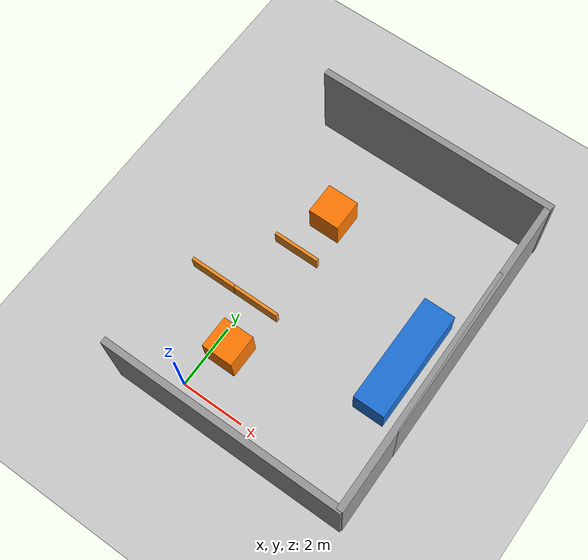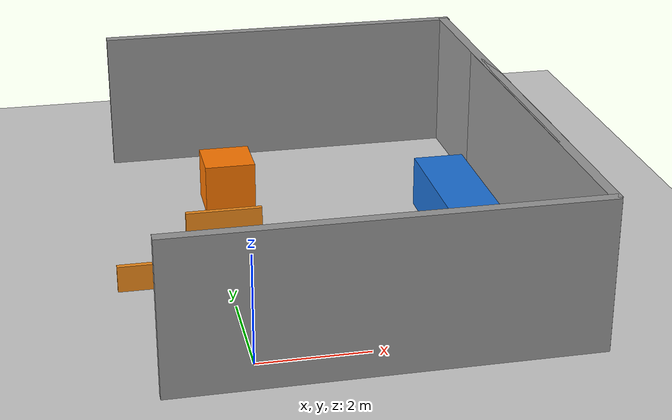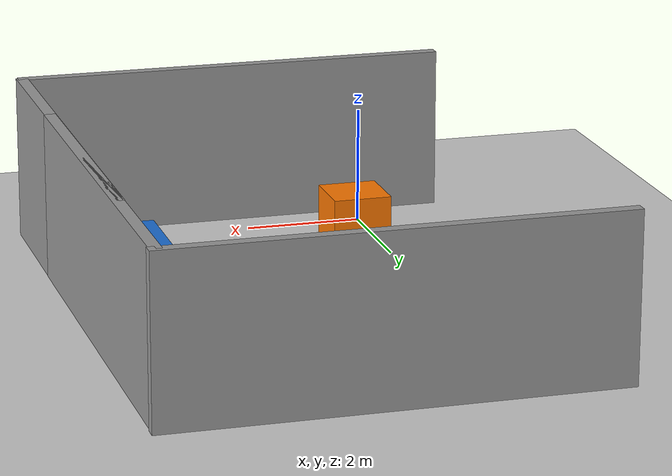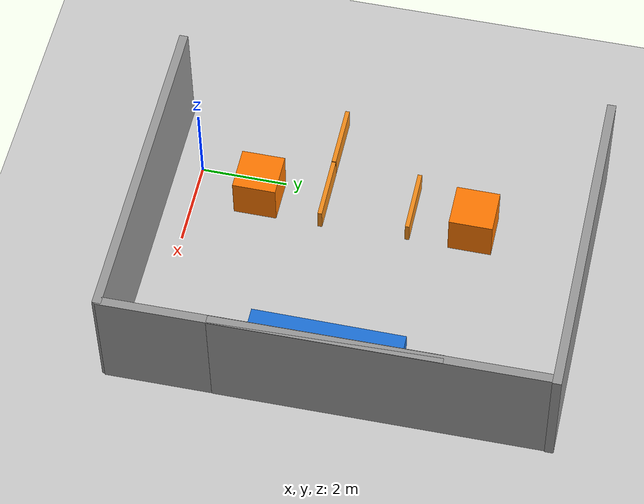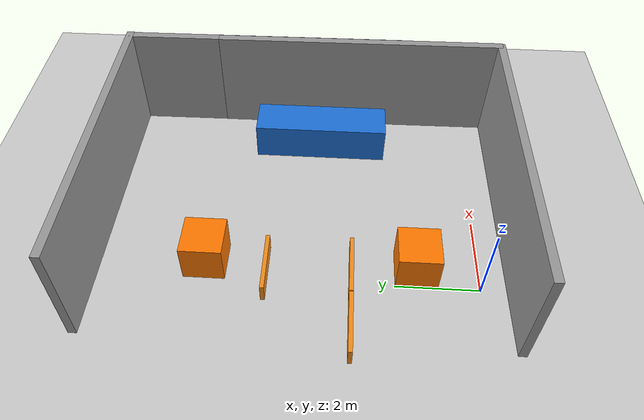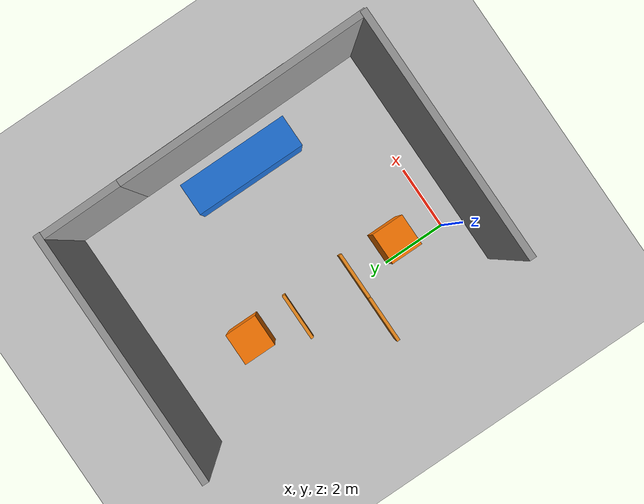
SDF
<sdf version="1.7">
 <world name="default">
  <model name="ground_plane">
   <static>1</static>
   <link name="link">
    <collision name="collision">
     <geometry><plane><normal>0 0 1</normal><size>100 100</size></plane></geometry>
     <surface><friction><ode><mu>100</mu><mu2>50</mu2></ode></friction></surface>
    </collision>
    <visual name="visual">
     <cast_shadows>0</cast_shadows>
     <geometry><plane><normal>0 0 1</normal><size>100 100</size></plane></geometry>
     <material>
      <script><uri>file://media/materials/scripts/gazebo.material</uri><name>Gazebo/Grey</name></script>
     </material>
    </visual>
   </link>
  </model>
  <model name="grey_wall_clone">
   <static>1</static>
   <link name="link">
    <pose>0 0 1.4 0 -0 0</pose>
    <collision name="collision"><geometry><box><size>7.5 0.2 2.8</size></box></geometry></collision>
    <visual name="visual">
     <cast_shadows>0</cast_shadows>
     <geometry><box><size>7.5 0.2 2.8</size></box></geometry>
     <material>
      <script>
       <uri>model://grey_wall/materials/scripts</uri>
       <uri>model://grey_wall/materials/textures</uri>
       <name>vrc/grey_wall</name>
      </script>
     </material>
    </visual>
   </link>
   <pose>2.09203 9.16116 0 0 -0 0</pose>
  </model>
  <model name="grey_wall_clone_2">
   <static>1</static>
   <link name="link">
    <pose>0 0 1.4 0 -0 0</pose>
    <collision name="collision"><geometry><box><size>7.5 0.2 2.8</size></box></geometry></collision>
    <visual name="visual">
     <cast_shadows>0</cast_shadows>
     <geometry><box><size>7.5 0.2 2.8</size></box></geometry>
     <material>
      <script>
       <uri>model://grey_wall/materials/scripts</uri>
       <uri>model://grey_wall/materials/textures</uri>
       <name>vrc/grey_wall</name>
      </script>
     </material>
    </visual>
   </link>
   <pose>2.13099 -0.706051 0 0 -0 0</pose>
  </model>
  <model name="grey_wall_clone_0_clone_clone">
   <static>1</static>
   <link name="link">
    <pose>0 0 1.4 0 -0 0</pose>
    <collision name="collision"><geometry><box><size>7.5 0.2 2.8</size></box></geometry></collision>
    <visual name="visual">
     <cast_shadows>0</cast_shadows>
     <geometry><box><size>7.5 0.2 2.8</size></box></geometry>
     <material>
      <script>
       <uri>model://grey_wall/materials/scripts</uri>
       <uri>model://grey_wall/materials/textures</uri>
       <name>vrc/grey_wall</name>
      </script>
     </material>
    </visual>
   </link>
   <pose>5.77499 3.00644 0 0 -0 1.58052</pose>
  </model>
  <model name="grey_wall_clone_0_clone_clone_0">
   <static>1</static>
   <link name="link">
    <pose>0 0 1.4 0 -0 0</pose>
    <collision name="collision"><geometry><box><size>7.5 0.2 2.8</size></box></geometry></collision>
    <visual name="visual">
     <cast_shadows>0</cast_shadows>
     <geometry><box><size>7.5 0.2 2.8</size></box></geometry>
     <material>
      <script>
       <uri>model://grey_wall/materials/scripts</uri>
       <uri>model://grey_wall/materials/textures</uri>
       <name>vrc/grey_wall</name>
      </script>
     </material>
    </visual>
   </link>
   <pose>5.758 5.42643 0 0 -0 1.58052</pose>
  </model>
  <model name="unit_box_0_clone">
   <link name="link">
    <inertial>
     <mass>1</mass>
     <inertia>
      <ixx>0.166667</ixx>
      <ixy>0</ixy>
      <ixz>0</ixz>
      <iyy>0.166667</iyy>
      <iyz>0</iyz>
      <izz>0.166667</izz>
     </inertia>
    </inertial>
    <visual name="visual">
     <geometry><box><size>1 1 1</size></box></geometry>
     <material>
      <script><name>Gazebo/Grey</name><uri>file://media/materials/scripts/gazebo.material</uri></script>
      <shader type="pixel"><normal_map>__default__</normal_map></shader>
      <ambient>1 0.471 0 1</ambient>
      <diffuse>0.7 0.7 0.7 1</diffuse>
      <specular>0.01 0.01 0.01 1</specular>
      <emissive>0 0 0 1</emissive>
     </material>
    </visual>
    <collision name="collision">
     <geometry><box><size>1 1 1</size></box></geometry>
     <surface>
      <friction>
       <ode><mu>1</mu><mu2>1</mu2><fdir1>0 0 0</fdir1><slip1>0</slip1><slip2>0</slip2></ode>
       <torsional>
        <coefficient>1</coefficient>
        <patch_radius>0</patch_radius>
        <surface_radius>0</surface_radius>
        <use_patch_radius>1</use_patch_radius>
        <ode><slip>0</slip></ode>
       </torsional>
      </friction>
      <bounce><restitution_coefficient>0</restitution_coefficient><threshold>1e+06</threshold></bounce>
      <contact>
       <collide_without_contact>0</collide_without_contact>
       <collide_without_contact_bitmask>1</collide_without_contact_bitmask>
       <collide_bitmask>1</collide_bitmask>
       <ode>
        <soft_cfm>0</soft_cfm>
        <soft_erp>0.2</soft_erp>
        <kp>1e+13</kp>
        <kd>1</kd>
        <max_vel>0.01</max_vel>
        <min_depth>0</min_depth>
       </ode>
       <bullet>
        <split_impulse>1</split_impulse>
        <split_impulse_penetration_threshold>-0.01</split_impulse_penetration_threshold>
        <soft_cfm>0</soft_cfm>
        <soft_erp>0.2</soft_erp>
        <kp>1e+13</kp>
        <kd>1</kd>
       </bullet>
      </contact>
     </surface>
    </collision>
   </link>
   <static>0</static>
   <pose>0.482992 6.50389 0.499995 -1e-05 -0 -0</pose>
  </model>
  <model name="unit_box_0_clone_1">
   <link name="link">
    <inertial>
     <mass>1</mass>
     <inertia>
      <ixx>0.166667</ixx>
      <ixy>0</ixy>
      <ixz>0</ixz>
      <iyy>0.166667</iyy>
      <iyz>0</iyz>
      <izz>0.166667</izz>
     </inertia>
    </inertial>
    <visual name="visual">
     <geometry><box><size>1 1 1</size></box></geometry>
     <material>
      <script><name>Gazebo/Grey</name><uri>file://media/materials/scripts/gazebo.material</uri></script>
      <shader type="pixel"><normal_map>__default__</normal_map></shader>
      <ambient>1 0.471 0 1</ambient>
      <diffuse>0.7 0.7 0.7 1</diffuse>
      <specular>0.01 0.01 0.01 1</specular>
      <emissive>0 0 0 1</emissive>
     </material>
    </visual>
    <collision name="collision">
     <geometry><box><size>1 1 1</size></box></geometry>
     <surface>
      <friction>
       <ode><mu>1</mu><mu2>1</mu2><fdir1>0 0 0</fdir1><slip1>0</slip1><slip2>0</slip2></ode>
       <torsional>
        <coefficient>1</coefficient>
        <patch_radius>0</patch_radius>
        <surface_radius>0</surface_radius>
        <use_patch_radius>1</use_patch_radius>
        <ode><slip>0</slip></ode>
       </torsional>
      </friction>
      <bounce><restitution_coefficient>0</restitution_coefficient><threshold>1e+06</threshold></bounce>
      <contact>
       <collide_without_contact>0</collide_without_contact>
       <collide_without_contact_bitmask>1</collide_without_contact_bitmask>
       <collide_bitmask>1</collide_bitmask>
       <ode>
        <soft_cfm>0</soft_cfm>
        <soft_erp>0.2</soft_erp>
        <kp>1e+13</kp>
        <kd>1</kd>
        <max_vel>0.01</max_vel>
        <min_depth>0</min_depth>
       </ode>
       <bullet>
        <split_impulse>1</split_impulse>
        <split_impulse_penetration_threshold>-0.01</split_impulse_penetration_threshold>
        <soft_cfm>0</soft_cfm>
        <soft_erp>0.2</soft_erp>
        <kp>1e+13</kp>
        <kd>1</kd>
       </bullet>
      </contact>
     </surface>
    </collision>
   </link>
   <static>0</static>
   <pose>0.497635 1.48972 0.499995 -1e-05 -0 -0</pose>
  </model>
  <model name="unit_box_clone_clone">
   <link name="link">
    <inertial>
     <mass>1</mass>
     <inertia>
      <ixx>0.166667</ixx>
      <ixy>0</ixy>
      <ixz>0</ixz>
      <iyy>0.166667</iyy>
      <iyz>0</iyz>
      <izz>0.166667</izz>
     </inertia>
    </inertial>
    <visual name="visual">
     <geometry><box><size>1 3.48173 1</size></box></geometry>
     <material>
      <script><name>Gazebo/Grey</name><uri>file://media/materials/scripts/gazebo.material</uri></script>
      <shader type="pixel"><normal_map>__default__</normal_map></shader>
      <ambient>0.11 0.443 0.847 1</ambient>
      <diffuse>0.7 0.7 0.7 1</diffuse>
      <specular>0.01 0.01 0.01 1</specular>
      <emissive>0 0 0 1</emissive>
     </material>
    </visual>
    <collision name="collision">
     <geometry><box><size>1 3.48173 1</size></box></geometry>
     <surface>
      <friction>
       <ode><mu>1</mu><mu2>1</mu2><fdir1>0 0 0</fdir1><slip1>0</slip1><slip2>0</slip2></ode>
       <torsional>
        <coefficient>1</coefficient>
        <patch_radius>0</patch_radius>
        <surface_radius>0</surface_radius>
        <use_patch_radius>1</use_patch_radius>
        <ode><slip>0</slip></ode>
       </torsional>
      </friction>
      <bounce><restitution_coefficient>0</restitution_coefficient><threshold>1e+06</threshold></bounce>
      <contact>
       <collide_without_contact>0</collide_without_contact>
       <collide_without_contact_bitmask>1</collide_without_contact_bitmask>
       <collide_bitmask>1</collide_bitmask>
       <ode>
        <soft_cfm>0</soft_cfm>
        <soft_erp>0.2</soft_erp>
        <kp>1e+13</kp>
        <kd>1</kd>
        <max_vel>0.01</max_vel>
        <min_depth>0</min_depth>
       </ode>
       <bullet>
        <split_impulse>1</split_impulse>
        <split_impulse_penetration_threshold>-0.01</split_impulse_penetration_threshold>
        <soft_cfm>0</soft_cfm>
        <soft_erp>0.2</soft_erp>
        <kp>1e+13</kp>
        <kd>1</kd>
       </bullet>
      </contact>
     </surface>
    </collision>
   </link>
   <static>0</static>
   <pose>4.69057 3.94303 0.499622 -0.000217 0 0</pose>
  </model>
  <model name="divider_2">
   <link name="link">
    <inertial>
     <mass>1</mass>
     <inertia>
      <ixx>0.166667</ixx>
      <ixy>0</ixy>
      <ixz>0</ixz>
      <iyy>0.166667</iyy>
      <iyz>0</iyz>
      <izz>0.166667</izz>
     </inertia>
    </inertial>
    <visual name="visual">
     <geometry><box><size>1.5 0.1 0.5</size></box></geometry>
     <material>
      <script><name>Gazebo/Orange</name><uri>file://media/materials/scripts/gazebo.material</uri></script>
      <shader type="pixel"><normal_map>__default__</normal_map></shader>
      <ambient>0.71 0.514 0.353 1</ambient>
      <diffuse>0.7 0.7 0.7 1</diffuse>
      <specular>0.01 0.01 0.01 1</specular>
      <emissive>0 0 0 1</emissive>
     </material>
    </visual>
    <collision name="collision">
     <geometry><box><size>1.5 0.1 0.5</size></box></geometry>
     <surface>
      <friction>
       <ode><mu>1</mu><mu2>1</mu2><fdir1>0 0 0</fdir1><slip1>0</slip1><slip2>0</slip2></ode>
       <torsional>
        <coefficient>1</coefficient>
        <patch_radius>0</patch_radius>
        <surface_radius>0</surface_radius>
        <use_patch_radius>1</use_patch_radius>
        <ode><slip>0</slip></ode>
       </torsional>
      </friction>
      <bounce><restitution_coefficient>0</restitution_coefficient><threshold>1e+06</threshold></bounce>
      <contact>
       <collide_without_contact>0</collide_without_contact>
       <collide_without_contact_bitmask>1</collide_without_contact_bitmask>
       <collide_bitmask>1</collide_bitmask>
       <ode>
        <soft_cfm>0</soft_cfm>
        <soft_erp>0.2</soft_erp>
        <kp>1e+13</kp>
        <kd>1</kd>
        <max_vel>0.01</max_vel>
        <min_depth>0</min_depth>
       </ode>
       <bullet>
        <split_impulse>1</split_impulse>
        <split_impulse_penetration_threshold>-0.01</split_impulse_penetration_threshold>
        <soft_cfm>0</soft_cfm>
        <soft_erp>0.2</soft_erp>
        <kp>1e+13</kp>
        <kd>1</kd>
       </bullet>
      </contact>
     </surface>
    </collision>
   </link>
   <static>0</static>
   <pose>-1.26136 3.02336 0.249992 0 -1.1e-05 -0.000405</pose>
  </model>
  <model name="divider_3">
   <link name="link">
    <inertial>
     <mass>1</mass>
     <inertia>
      <ixx>0.166667</ixx>
      <ixy>0</ixy>
      <ixz>0</ixz>
      <iyy>0.166667</iyy>
      <iyz>0</iyz>
      <izz>0.166667</izz>
     </inertia>
    </inertial>
    <visual name="visual">
     <geometry><box><size>1.5 0.1 0.5</size></box></geometry>
     <material>
      <script><name>Gazebo/Orange</name><uri>file://media/materials/scripts/gazebo.material</uri></script>
      <shader type="pixel"><normal_map>__default__</normal_map></shader>
      <ambient>0.71 0.514 0.353 1</ambient>
      <diffuse>0.7 0.7 0.7 1</diffuse>
      <specular>0.01 0.01 0.01 1</specular>
      <emissive>0 0 0 1</emissive>
     </material>
    </visual>
    <collision name="collision">
     <geometry><box><size>1.5 0.1 0.5</size></box></geometry>
     <surface>
      <friction>
       <ode><mu>1</mu><mu2>1</mu2><fdir1>0 0 0</fdir1><slip1>0</slip1><slip2>0</slip2></ode>
       <torsional>
        <coefficient>1</coefficient>
        <patch_radius>0</patch_radius>
        <surface_radius>0</surface_radius>
        <use_patch_radius>1</use_patch_radius>
        <ode><slip>0</slip></ode>
       </torsional>
      </friction>
      <bounce><restitution_coefficient>0</restitution_coefficient><threshold>1e+06</threshold></bounce>
      <contact>
       <collide_without_contact>0</collide_without_contact>
       <collide_without_contact_bitmask>1</collide_without_contact_bitmask>
       <collide_bitmask>1</collide_bitmask>
       <ode>
        <soft_cfm>0</soft_cfm>
        <soft_erp>0.2</soft_erp>
        <kp>1e+13</kp>
        <kd>1</kd>
        <max_vel>0.01</max_vel>
        <min_depth>0</min_depth>
       </ode>
       <bullet>
        <split_impulse>1</split_impulse>
        <split_impulse_penetration_threshold>-0.01</split_impulse_penetration_threshold>
        <soft_cfm>0</soft_cfm>
        <soft_erp>0.2</soft_erp>
        <kp>1e+13</kp>
        <kd>1</kd>
       </bullet>
      </contact>
     </surface>
    </collision>
   </link>
   <static>0</static>
   <pose>0.260208 3.02506 0.249992 0 -1.1e-05 0.000315</pose>
  </model>
  <model name="divider_4">
   <link name="link">
    <inertial>
     <mass>1</mass>
     <inertia>
      <ixx>0.166667</ixx>
      <ixy>0</ixy>
      <ixz>0</ixz>
      <iyy>0.166667</iyy>
      <iyz>0</iyz>
      <izz>0.166667</izz>
     </inertia>
    </inertial>
    <visual name="visual">
     <geometry><box><size>1.5 0.1 0.5</size></box></geometry>
     <material>
      <script><name>Gazebo/Orange</name><uri>file://media/materials/scripts/gazebo.material</uri></script>
      <shader type="pixel"><normal_map>__default__</normal_map></shader>
      <ambient>0.71 0.514 0.353 1</ambient>
      <diffuse>0.7 0.7 0.7 1</diffuse>
      <specular>0.01 0.01 0.01 1</specular>
      <emissive>0 0 0 1</emissive>
     </material>
    </visual>
    <collision name="collision">
     <geometry><box><size>1.5 0.1 0.5</size></box></geometry>
     <surface>
      <friction>
       <ode><mu>1</mu><mu2>1</mu2><fdir1>0 0 0</fdir1><slip1>0</slip1><slip2>0</slip2></ode>
       <torsional>
        <coefficient>1</coefficient>
        <patch_radius>0</patch_radius>
        <surface_radius>0</surface_radius>
        <use_patch_radius>1</use_patch_radius>
        <ode><slip>0</slip></ode>
       </torsional>
      </friction>
      <bounce><restitution_coefficient>0</restitution_coefficient><threshold>1e+06</threshold></bounce>
      <contact>
       <collide_without_contact>0</collide_without_contact>
       <collide_without_contact_bitmask>1</collide_without_contact_bitmask>
       <collide_bitmask>1</collide_bitmask>
       <ode>
        <soft_cfm>0</soft_cfm>
        <soft_erp>0.2</soft_erp>
        <kp>1e+13</kp>
        <kd>1</kd>
        <max_vel>0.01</max_vel>
        <min_depth>0</min_depth>
       </ode>
       <bullet>
        <split_impulse>1</split_impulse>
        <split_impulse_penetration_threshold>-0.01</split_impulse_penetration_threshold>
        <soft_cfm>0</soft_cfm>
        <soft_erp>0.2</soft_erp>
        <kp>1e+13</kp>
        <kd>1</kd>
       </bullet>
      </contact>
     </surface>
    </collision>
   </link>
   <static>0</static>
   <pose>0.20772 5.0507 0.249992 0 -1.1e-05 -0.000532</pose>
  </model>
 </world>
</sdf>
